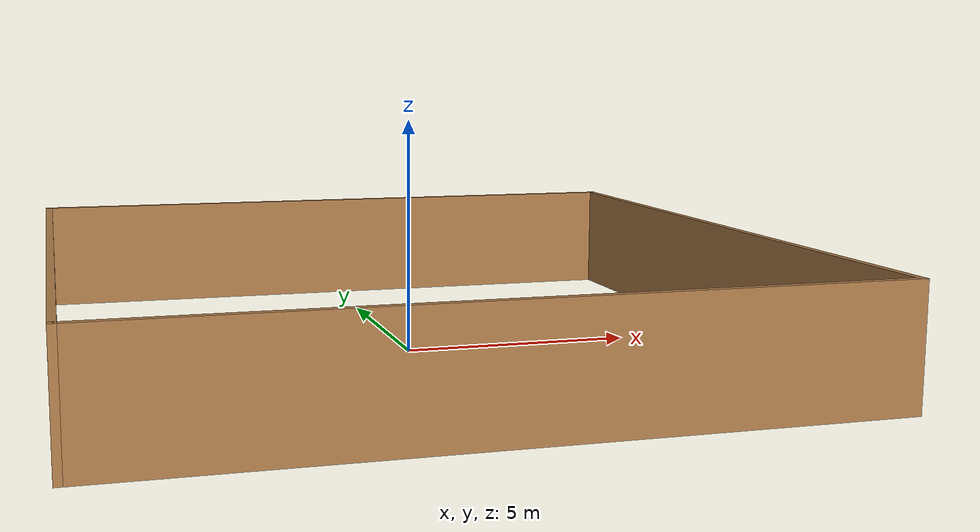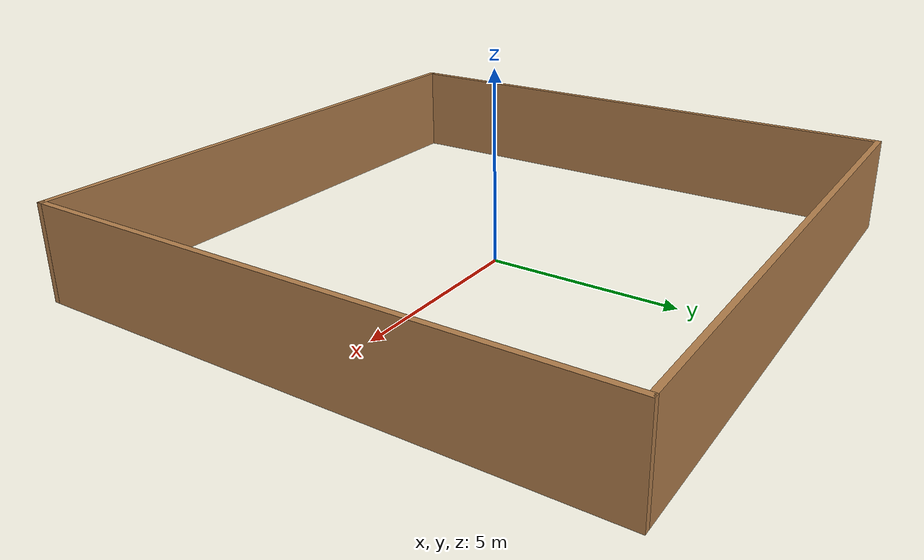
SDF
<?xml version='1.0'?>
<sdf version='1.7'>
    <model name='awesome_boundary'>
        <pose>-0.021885 0.065478 0 0 -0 0</pose>
        <link name='Wall_0'>
            <collision name='Wall_0_Collision'>
                <geometry>
                    <box>
                        <size>15 0.15 2.5</size>
                    </box>
                </geometry>
                <pose>0 0 1.25 0 -0 0</pose>
            </collision>
            <visual name='Wall_0_Visual'>
                <pose>0 0 1.25 0 -0 0</pose>
                <geometry>
                    <box>
                        <size>15 0.15 2.5</size>
                    </box>
                </geometry>
                <material>
                    <script>
                        <uri>file://media/materials/scripts/gazebo.material</uri>
                        <name>Gazebo/Wood</name>
                    </script>
                    <ambient>1 1 1 1</ambient>
                </material>
                <meta>
                    <layer>0</layer>
                </meta>
            </visual>
            <pose>-0 7.425 0 0 -0 3.14159</pose>
        </link>
        <link name='Wall_2'>
            <collision name='Wall_2_Collision'>
                <geometry>
                    <box>
                        <size>15 0.15 2.5</size>
                    </box>
                </geometry>
                <pose>0 0 1.25 0 -0 0</pose>
            </collision>
            <visual name='Wall_2_Visual'>
                <pose>0 0 1.25 0 -0 0</pose>
                <geometry>
                    <box>
                        <size>15 0.15 2.5</size>
                    </box>
                </geometry>
                <material>
                    <script>
                        <uri>file://media/materials/scripts/gazebo.material</uri>
                        <name>Gazebo/Wood</name>
                    </script>
                    <ambient>1 1 1 1</ambient>
                </material>
                <meta>
                    <layer>0</layer>
                </meta>
            </visual>
            <pose>7.425 -0 0 0 -0 -1.5708</pose>
        </link>
        <link name='Wall_3'>
            <collision name='Wall_3_Collision'>
                <geometry>
                    <box>
                        <size>15 0.15 2.5</size>
                    </box>
                </geometry>
                <pose>0 0 1.25 0 -0 0</pose>
            </collision>
            <visual name='Wall_3_Visual'>
                <pose>0 0 1.25 0 -0 0</pose>
                <geometry>
                    <box>
                        <size>15 0.15 2.5</size>
                    </box>
                </geometry>
                <material>
                    <script>
                        <uri>file://media/materials/scripts/gazebo.material</uri>
                        <name>Gazebo/Wood</name>
                    </script>
                    <ambient>1 1 1 1</ambient>
                </material>
                <meta>
                    <layer>0</layer>
                </meta>
            </visual>
            <pose>-0 -7.425 0 0 -0 3.14159</pose>
        </link>
        <link name='Wall_4'>
            <collision name='Wall_4_Collision'>
                <geometry>
                    <box>
                        <size>15 0.15 2.5</size>
                    </box>
                </geometry>
                <pose>0 0 1.25 0 -0 0</pose>
            </collision>
            <visual name='Wall_4_Visual'>
                <pose>0 0 1.25 0 -0 0</pose>
                <geometry>
                    <box>
                        <size>15 0.15 2.5</size>
                    </box>
                </geometry>
                <material>
                    <script>
                        <uri>file://media/materials/scripts/gazebo.material</uri>
                        <name>Gazebo/Wood</name>
                    </script>
                    <ambient>1 1 1 1</ambient>
                </material>
                <meta>
                    <layer>0</layer>
                </meta>
            </visual>
            <pose>-7.425 -0 0 0 -0 1.5708</pose>
        </link>
        <static>1</static>
    </model>
</sdf>
